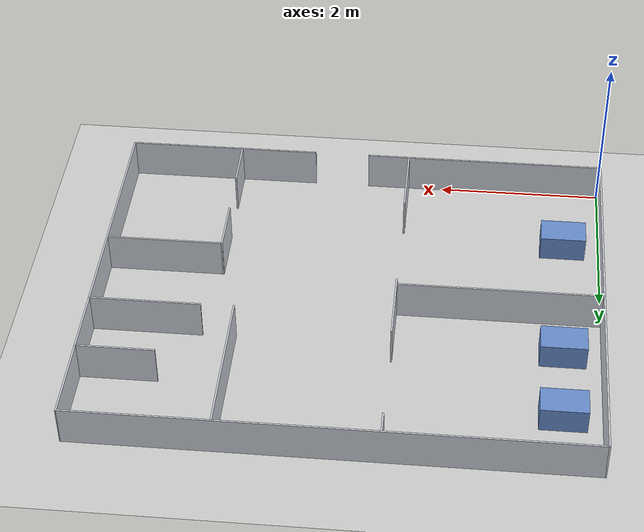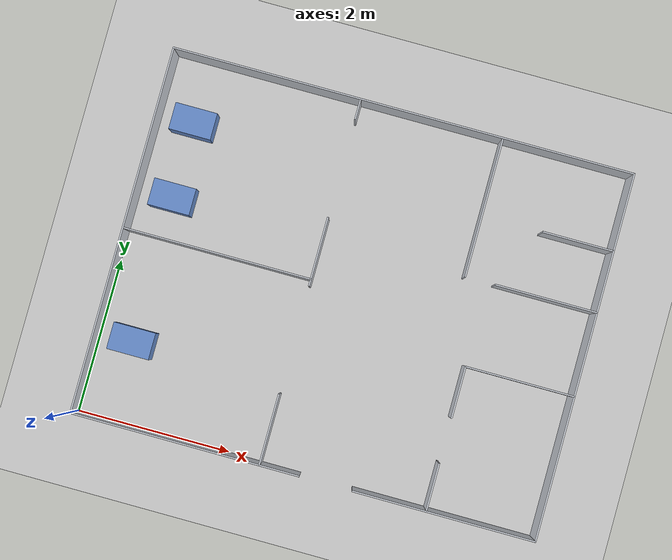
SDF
<?xml version="1.0"?>
<sdf version='1.8'>
    <world name='hospital'>
        <physics name='1ms' type='ignored'>
            <max_step_size>0.003</max_step_size>
            <real_time_factor>1</real_time_factor>
            <real_time_update_rate>1000</real_time_update_rate>
        </physics>
        <plugin name='ignition::gazebo::systems::Physics' filename='ignition-gazebo-physics-system' />
        <plugin name='ignition::gazebo::systems::UserCommands' filename='ignition-gazebo-user-commands-system' />
        <plugin name='ignition::gazebo::systems::SceneBroadcaster' filename='ignition-gazebo-scene-broadcaster-system' />
        <plugin name='ignition::gazebo::systems::Contact' filename='ignition-gazebo-contact-system' />
        <light name='sun' type='directional'>
            <cast_shadows>1</cast_shadows>
            <pose>0 0 10 0 -0 0</pose>
            <diffuse>0.8 0.8 0.8 1</diffuse>
            <specular>0.2 0.2 0.2 1</specular>
            <attenuation><range>1000</range><constant>0.9</constant><linear>0.01</linear><quadratic>0.001</quadratic></attenuation>
            <direction>-0.5 0.1 -0.9</direction>
            <spot><inner_angle>0</inner_angle><outer_angle>0</outer_angle><falloff>0</falloff></spot>
        </light>
        <gravity>0 0 -9.8</gravity>
        <magnetic_field>6e-06 2.3e-05 -4.2e-05</magnetic_field>
        <atmosphere type='adiabatic' />
        <scene><ambient>0.4 0.4 0.4 1</ambient><background>0.7 0.7 0.7 1</background><shadows>1</shadows></scene>
        <model name='ground_plane'>
            <static>1</static>
            <link name='link'>
                <collision name='collision'><geometry><plane><normal>0 0 1</normal><size>100 100</size></plane></geometry>
                    <surface><friction><ode /></friction><bounce /><contact /></surface></collision>
                <visual name='visual'><geometry><plane><normal>0 0 1</normal><size>100 100</size></plane></geometry>
                    <material><ambient>0.8 0.8 0.8 1</ambient><diffuse>0.8 0.8 0.8 1</diffuse><specular>0.8 0.8 0.8 1</specular></material></visual>
            </link>
            <pose>0 0 0 0 -0 0</pose>
        </model>
        <model name='walls'>
            <static>true</static>
            <link name='wall0'>
                <pose>3.0000 4.7600 0.2500 0 0 0.00000</pose>
                <collision name='col'><geometry><box><size>6.0400 0.0200 0.5000</size></box></geometry></collision>
                <visual name='vis'><geometry><box><size>6.0400 0.0200 0.5000</size></box></geometry><material><ambient>0.80 0.82 0.85 1</ambient><diffuse>0.80 0.82 0.85 1</diffuse><specular>0.2 0.2 0.2 1</specular></material></visual>
            </link>
            <link name='wall1'>
                <pose>-0.0100 2.3750 0.2500 0 0 1.57080</pose>
                <collision name='col'><geometry><box><size>4.7900 0.0200 0.5000</size></box></geometry></collision>
                <visual name='vis'><geometry><box><size>4.7900 0.0200 0.5000</size></box></geometry><material><ambient>0.80 0.82 0.85 1</ambient><diffuse>0.80 0.82 0.85 1</diffuse><specular>0.2 0.2 0.2 1</specular></material></visual>
            </link>
            <link name='wall2'>
                <pose>6.0100 2.3750 0.2500 0 0 1.57080</pose>
                <collision name='col'><geometry><box><size>4.7900 0.0200 0.5000</size></box></geometry></collision>
                <visual name='vis'><geometry><box><size>4.7900 0.0200 0.5000</size></box></geometry><material><ambient>0.80 0.82 0.85 1</ambient><diffuse>0.80 0.82 0.85 1</diffuse><specular>0.2 0.2 0.2 1</specular></material></visual>
            </link>
            <link name='wall3'>
                <pose>1.4700 -0.0100 0.2500 0 0 0.00000</pose>
                <collision name='col'><geometry><box><size>2.9800 0.0200 0.5000</size></box></geometry></collision>
                <visual name='vis'><geometry><box><size>2.9800 0.0200 0.5000</size></box></geometry><material><ambient>0.80 0.82 0.85 1</ambient><diffuse>0.80 0.82 0.85 1</diffuse><specular>0.2 0.2 0.2 1</specular></material></visual>
            </link>
            <link name='wall4'>
                <pose>4.8300 -0.0100 0.2500 0 0 0.00000</pose>
                <collision name='col'><geometry><box><size>2.3800 0.0200 0.5000</size></box></geometry></collision>
                <visual name='vis'><geometry><box><size>2.3800 0.0200 0.5000</size></box></geometry><material><ambient>0.80 0.82 0.85 1</ambient><diffuse>0.80 0.82 0.85 1</diffuse><specular>0.2 0.2 0.2 1</specular></material></visual>
            </link>
            <link name='wall5'>
                <pose>1.2200 2.4000 0.2500 0 0 0.00000</pose>
                <collision name='col'><geometry><box><size>2.4600 0.0200 0.5000</size></box></geometry></collision>
                <visual name='vis'><geometry><box><size>2.4600 0.0200 0.5000</size></box></geometry><material><ambient>0.80 0.82 0.85 1</ambient><diffuse>0.80 0.82 0.85 1</diffuse><specular>0.2 0.2 0.2 1</specular></material></visual>
            </link>
            <link name='wall6'>
                <pose>2.4400 0.4500 0.2500 0 0 1.57080</pose>
                <collision name='col'><geometry><box><size>0.9200 0.0200 0.5000</size></box></geometry></collision>
                <visual name='vis'><geometry><box><size>0.9200 0.0200 0.5000</size></box></geometry><material><ambient>0.80 0.82 0.85 1</ambient><diffuse>0.80 0.82 0.85 1</diffuse><specular>0.2 0.2 0.2 1</specular></material></visual>
            </link>
            <link name='wall7'>
                <pose>2.4400 2.7600 0.2500 0 0 1.57080</pose>
                <collision name='col'><geometry><box><size>0.9000 0.0200 0.5000</size></box></geometry></collision>
                <visual name='vis'><geometry><box><size>0.9000 0.0200 0.5000</size></box></geometry><material><ambient>0.80 0.82 0.85 1</ambient><diffuse>0.80 0.82 0.85 1</diffuse><specular>0.2 0.2 0.2 1</specular></material></visual>
            </link>
            <link name='wall8'>
                <pose>2.4400 4.6250 0.2500 0 0 1.57080</pose>
                <collision name='col'><geometry><box><size>0.2700 0.0200 0.5000</size></box></geometry></collision>
                <visual name='vis'><geometry><box><size>0.2700 0.0200 0.5000</size></box></geometry><material><ambient>0.80 0.82 0.85 1</ambient><diffuse>0.80 0.82 0.85 1</diffuse><specular>0.2 0.2 0.2 1</specular></material></visual>
            </link>
            <link name='wall9'>
                <pose>4.3000 3.8500 0.2500 0 0 1.57080</pose>
                <collision name='col'><geometry><box><size>1.8200 0.0200 0.5000</size></box></geometry></collision>
                <visual name='vis'><geometry><box><size>1.8200 0.0200 0.5000</size></box></geometry><material><ambient>0.80 0.82 0.85 1</ambient><diffuse>0.80 0.82 0.85 1</diffuse><specular>0.2 0.2 0.2 1</specular></material></visual>
            </link>
            <link name='wall10'>
                <pose>5.3500 2.9500 0.2500 0 0 0.00000</pose>
                <collision name='col'><geometry><box><size>1.3200 0.0200 0.5000</size></box></geometry></collision>
                <visual name='vis'><geometry><box><size>1.3200 0.0200 0.5000</size></box></geometry><material><ambient>0.80 0.82 0.85 1</ambient><diffuse>0.80 0.82 0.85 1</diffuse><specular>0.2 0.2 0.2 1</specular></material></visual>
            </link>
            <link name='wall11'>
                <pose>5.5500 3.7500 0.2500 0 0 0.00000</pose>
                <collision name='col'><geometry><box><size>0.9200 0.0200 0.5000</size></box></geometry></collision>
                <visual name='vis'><geometry><box><size>0.9200 0.0200 0.5000</size></box></geometry><material><ambient>0.80 0.82 0.85 1</ambient><diffuse>0.80 0.82 0.85 1</diffuse><specular>0.2 0.2 0.2 1</specular></material></visual>
            </link>
            <link name='wall12'>
                <pose>5.3000 1.8600 0.2500 0 0 0.00000</pose>
                <collision name='col'><geometry><box><size>1.4200 0.0200 0.5000</size></box></geometry></collision>
                <visual name='vis'><geometry><box><size>1.4200 0.0200 0.5000</size></box></geometry><material><ambient>0.80 0.82 0.85 1</ambient><diffuse>0.80 0.82 0.85 1</diffuse><specular>0.2 0.2 0.2 1</specular></material></visual>
            </link>
            <link name='wall13'>
                <pose>4.6000 0.3000 0.2500 0 0 1.57080</pose>
                <collision name='col'><geometry><box><size>0.6200 0.0200 0.5000</size></box></geometry></collision>
                <visual name='vis'><geometry><box><size>0.6200 0.0200 0.5000</size></box></geometry><material><ambient>0.80 0.82 0.85 1</ambient><diffuse>0.80 0.82 0.85 1</diffuse><specular>0.2 0.2 0.2 1</specular></material></visual>
            </link>
            <link name='wall14'>
                <pose>4.6000 1.5300 0.2500 0 0 1.57080</pose>
                <collision name='col'><geometry><box><size>0.6800 0.0200 0.5000</size></box></geometry></collision>
                <visual name='vis'><geometry><box><size>0.6800 0.0200 0.5000</size></box></geometry><material><ambient>0.80 0.82 0.85 1</ambient><diffuse>0.80 0.82 0.85 1</diffuse><specular>0.2 0.2 0.2 1</specular></material></visual>
            </link>
        </model>
        <model name='beds'>
            <static>true</static>
            <link name='bed1'>
                <pose>0.4500 3.9500 0.1600 0 0 0.00000</pose>
                <collision name='col'><geometry><box><size>0.5500 0.3500 0.3200</size></box></geometry></collision>
                <visual name='vis'><geometry><box><size>0.5500 0.3500 0.3200</size></box></geometry><material><ambient>0.40 0.55 0.80 1</ambient><diffuse>0.40 0.55 0.80 1</diffuse><specular>0.2 0.2 0.2 1</specular></material></visual>
            </link>
            <link name='bed2'>
                <pose>0.4500 2.9500 0.1600 0 0 0.00000</pose>
                <collision name='col'><geometry><box><size>0.5500 0.3500 0.3200</size></box></geometry></collision>
                <visual name='vis'><geometry><box><size>0.5500 0.3500 0.3200</size></box></geometry><material><ambient>0.40 0.55 0.80 1</ambient><diffuse>0.40 0.55 0.80 1</diffuse><specular>0.2 0.2 0.2 1</specular></material></visual>
            </link>
            <link name='bed3'>
                <pose>0.4500 1.0500 0.1600 0 0 0.00000</pose>
                <collision name='col'><geometry><box><size>0.5500 0.3500 0.3200</size></box></geometry></collision>
                <visual name='vis'><geometry><box><size>0.5500 0.3500 0.3200</size></box></geometry><material><ambient>0.40 0.55 0.80 1</ambient><diffuse>0.40 0.55 0.80 1</diffuse><specular>0.2 0.2 0.2 1</specular></material></visual>
            </link>
        </model>
    </world>
</sdf>
